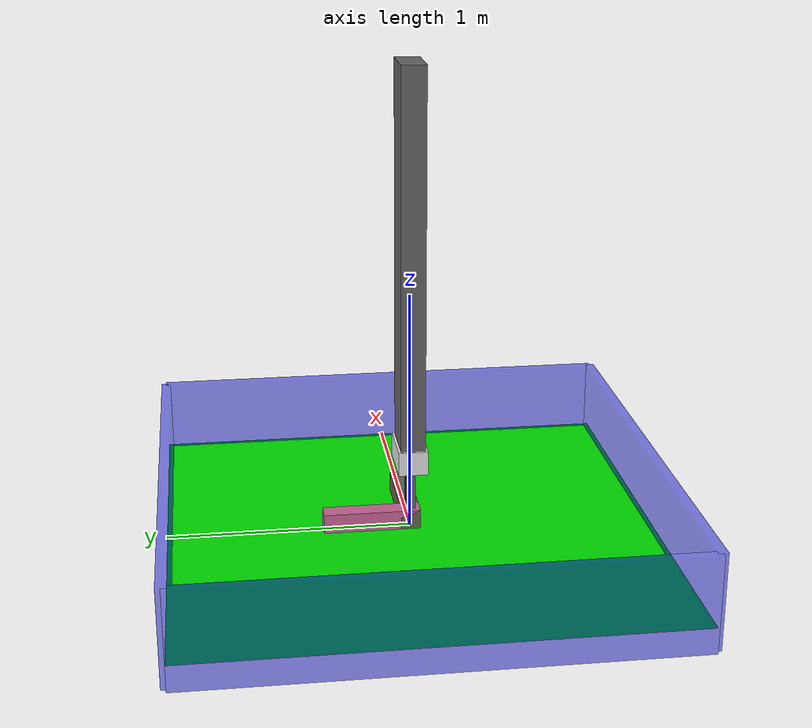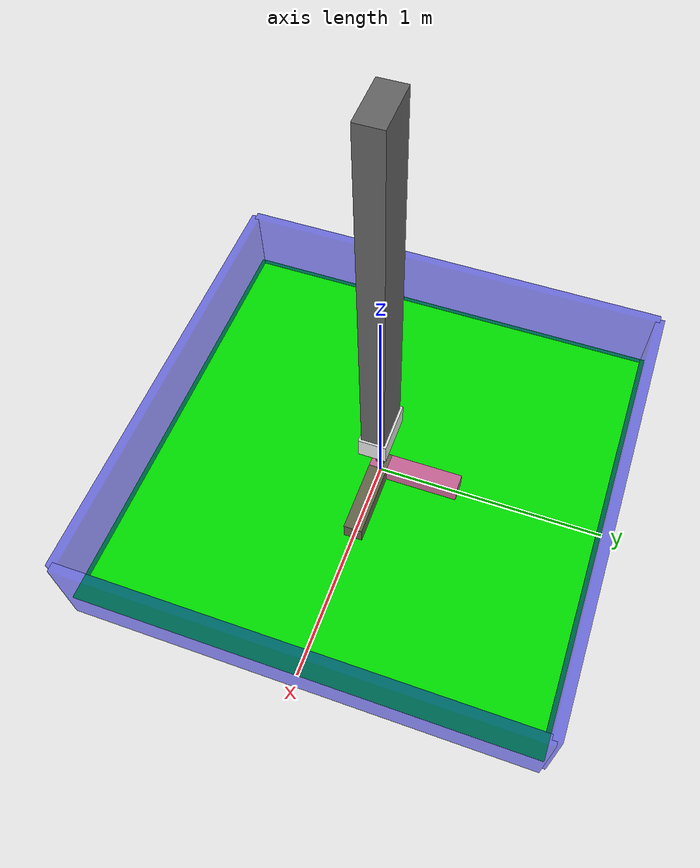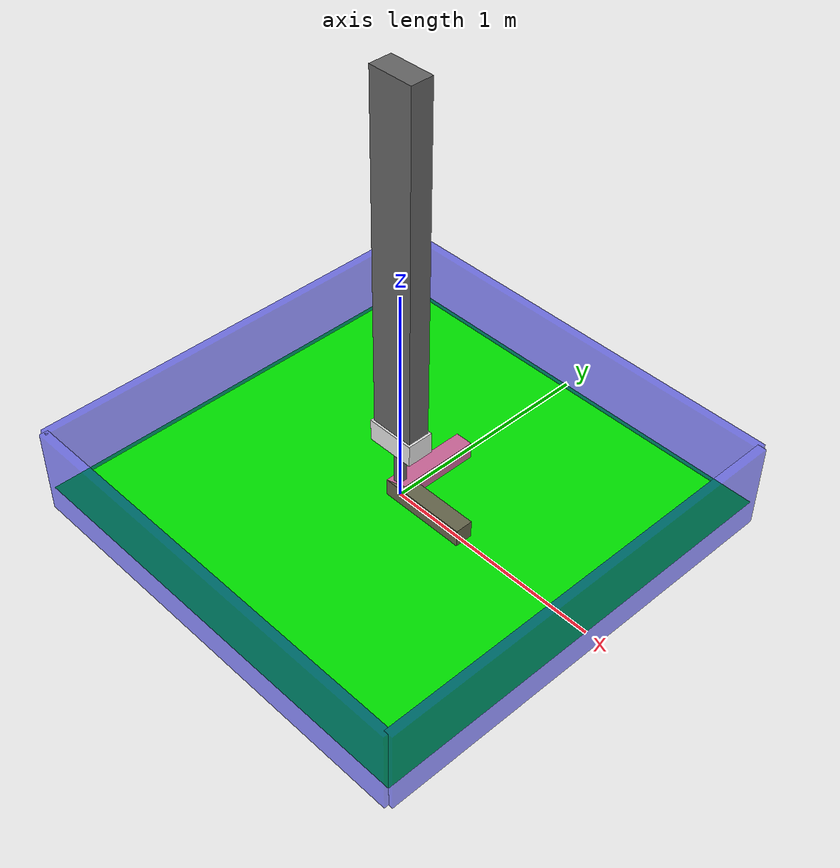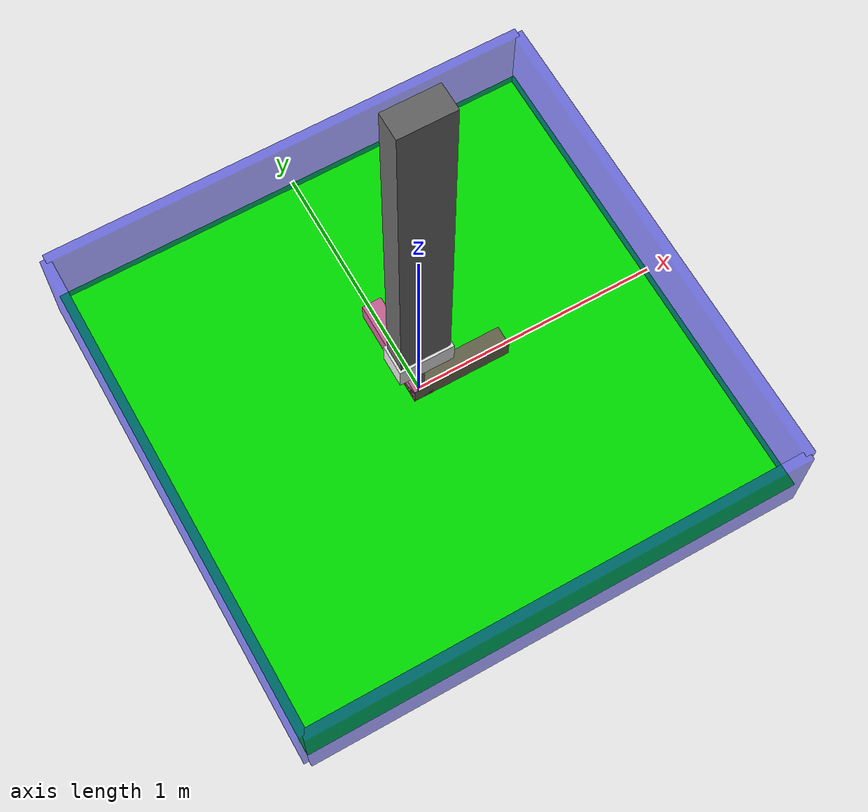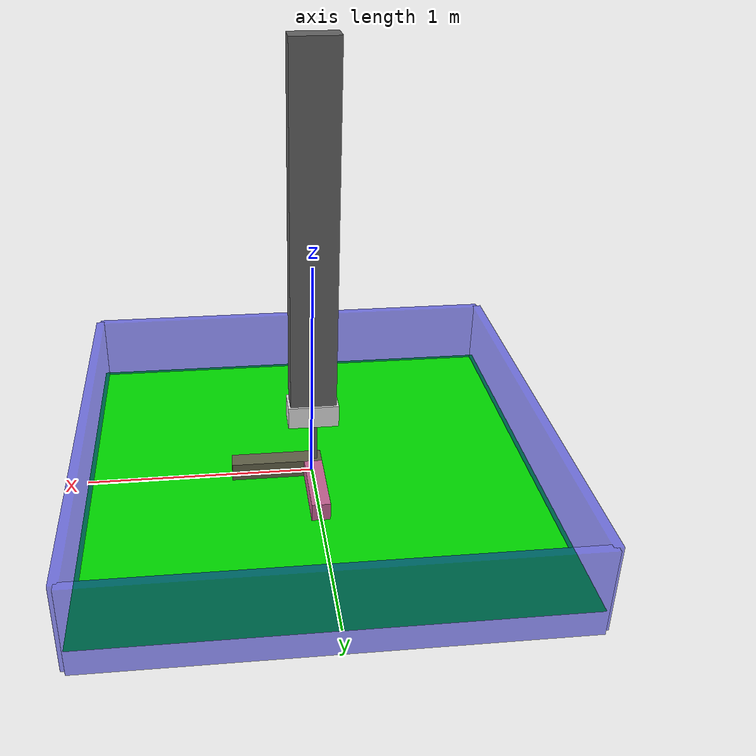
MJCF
<mujoco>
    <!-- Default settings for different tags of the model. -->
    <default>
        <joint pos="0 0 0" armature="1" limited="true" damping="1000" />
        <geom pos="0 0 0" rgba=".4 .4 .4 1" condim="3" contype="0" conaffinity="0" />
        <motor ctrlrange="-1 1" ctrllimited="true" gear="500" />
    </default>

    <compiler inertiafromgeom="true" angle="radian" />
    <option gravity="0 0 -2" timestep="0.01"/>

    <!-- Definition of all geometric shapes and joints. -->
    <worldbody>
        <!-- Diffuse lighting at position (0,0,3) pointing downwards in z direction. -->
        <light diffuse=".5 .5 .5" pos="0 0 10" dir="0 0 -1" castshadow="false" />

        <!-- Plane centered at origin with color green and size 1*1 unit^2. -->
        <geom name="table" type="plane" size="1 1 0.1" rgba="0 0.9 0 1" friction="0 0 0" contype="1" conaffinity="1" />

        <!-- Build walls around the plane. -->
        <geom type="box" size="1 0.02 0.2" pos="0 1 0.1" rgba="0 0 0.9 0.5"  contype="1" conaffinity="1" />
        <geom type="box" size="1 0.02 0.2" pos="0 -1 0.1" rgba="0 0 0.9 0.5"  contype="1" conaffinity="1" />
        <geom type="box" size="0.02 1 0.2" pos="1 0 0.1" rgba="0 0 0.9 0.5"  contype="1" conaffinity="1" />
        <geom type="box" size="0.02 1 0.2" pos="-1 0 0.1" rgba="0 0 0.9 0.5"  contype="1" conaffinity="1" />

        <!-- Build robotic arms. -->
        <body name="robot" pos="0 0 1.12">
            <joint name="cart_slide_x" type="slide" axis="1 0 0" range="-1 1" />
            <joint name="cart_slide_y" type="slide" axis="0 1 0" range="-1 1" />
            <joint name="cart_slide_z" type="slide" axis="0 0 1" range="0 0.3" />
            <joint name="cart_rotate_z" type="hinge" axis="0 0 1" range="-31.4 31.4" />

            <geom name="arm" type="box" size=".1 .05 .8" pos="0 0 0" />
            <geom name="wrist" type="box" size=".11 .06 .05" pos="0 0 -0.8" rgba=".9 .9 .9 1" contype="1" conaffinity="1" />

            <body name="l_hand" pos="-0.01 0 -0.9">
                <joint name="l_hand_slide_x" type="slide" axis="-1 0 0" range="0 0.07" />
                <geom name="l_finger" type="box" size=".01 .02 .2" density="0.001" contype="1" conaffinity="1" />
            </body>

            <body name="r_hand" pos="0.001 0 -0.9">
                <joint name="r_hand_slide_x" type="slide" axis="1 0 0" range="0 0.07" />
                <geom name="r_finger" type="box" size=".01 .02 .2" density="0.001" contype="1" conaffinity="1" />
            </body>
        </body>

        <!-- Objects for the robot to push and goals for the objects. -->
        <body name="obj1" pos="0 0 0.04">
            <geom type="box" size=".01 .01 .01" rgba="0 0 0 0" />
            <body name="obj1_rotation" pos="0 0 0">
                <geom type="box" size=".01 .01 .01" rgba="0 0 0 0" />
                <body name="obj1_1" pos="0 .16 0">
                    <geom type="box" size="0.04 0.2 0.04" rgba=".8 .4 .6 1" density='0.00001' contype="1" conaffinity="1" />
                </body>
                <body name="obj1_2" pos=".16 0 0">
                    <geom type="box" size="0.2 0.04 0.04" rgba=".4 .4 .3 1" density='0.00001' contype="1" conaffinity="1" />
                </body>
                <joint name="obj1_rotate_z" type="hinge" axis="0 0 1" range="-31.4 31.4" />
            </body>
            <joint name="obj1_slide_z" type="slide" axis="0 0 1" range="-10 10" damping="10.0" />
            <joint name="obj1_slide_x" type="slide" axis="1 0 0" range="-10 10" damping="10.0" />
            <joint name="obj1_slide_y" type="slide" axis="0 1 0" range="-10 10" damping="10.0" />
        </body>

        <body name="goal1" pos="0 0 0.04">
            <geom type="box" size=".01 .01 .01" rgba="0 0 0 0" />
            <body name="goal1_rotation" pos="0 0 0">
                <geom type="box" size=".01 .01 .01" rgba="0 0 0 0" />
                <body name="goal1_1" pos="0 .16 0">
                    <geom type="box" size="0.04 0.2 0.04" rgba=".8 .4 .6 .0" density='0.00001' contype="0" conaffinity="0" />
                </body>
                <body name="goal1_2" pos=".16 0 0">
                    <geom type="box" size="0.2 0.04 0.04" rgba=".4 .4 .3 .0" density='0.00001' contype="0" conaffinity="0" />
                </body>
                <joint name="goal1_rotate_z" type="hinge" axis="0 0 1" range="-31.4 31.4" />
            </body>
            <joint name="goal1_slide_x" type="slide" axis="1 0 0" range="-10 10" damping="0.5" />
            <joint name="goal1_slide_y" type="slide" axis="0 1 0" range="-10 10" damping="0.5" />
        </body>

        <body name="obj2" pos="0 0 0.04">
            <geom type="box" size=".01 .01 .01" rgba="0 0 0 0" />
            <body name="obj2_rotation" pos="0 0 0">
                <geom type="box" size=".01 .01 .01" rgba="0 0 0 0" />
                <body name="obj2_1" pos="0 .16 0">
                    <geom type="box" size="0.04 0.2 0.04" rgba="1 0.7 0.4 1" density='0.00001' contype="1" conaffinity="1" />
                </body>
                <body name="obj2_2" pos=".16 0 0">
                    <geom type="box" size="0.2 0.04 0.04" rgba="0.7 0.4 0.3 1" density='0.00001' contype="1" conaffinity="1" />
                </body>
                <joint name="obj2_rotate_z" type="hinge" axis="0 0 1" range="-31.4 31.4" />
            </body>
            <joint name="obj2_slide_z" type="slide" axis="0 0 1" range="-10 10" damping="10.0" />
            <joint name="obj2_slide_x" type="slide" axis="1 0 0" range="-10 10" damping="10.0" />
            <joint name="obj2_slide_y" type="slide" axis="0 1 0" range="-10 10" damping="10.0" />
        </body>

        <body name="goal2" pos="0 0 0.04">
            <geom type="box" size=".01 .01 .01" rgba="0 0 0 0" />
            <body name="goal2_rotation" pos="0 0 0">
                <geom type="box" size=".01 .01 .01" rgba="0 0 0 0" />
                <body name="goal2_1" pos="0 .16 0">
                    <geom type="box" size="0.04 0.2 0.04" rgba="1 0.7 0.4 0.0" density='0.00001' contype="0" conaffinity="0" />
                </body>
                <body name="goal2_2" pos=".16 0 0">
                    <geom type="box" size="0.2 0.04 0.04" rgba="0.7 0.4 0.3 0.0" density='0.00001' contype="0" conaffinity="0" />
                </body>
                <joint name="goal2_rotate_z" type="hinge" axis="0 0 1" range="-31.4 31.4" />
            </body>
            <joint name="goal2_slide_x" type="slide" axis="1 0 0" range="-10 10" damping="0.5" />
            <joint name="goal2_slide_y" type="slide" axis="0 1 0" range="-10 10" damping="0.5" />
        </body>
    </worldbody>

    <!-- Actuators that can be controlled by action vector. -->
    <actuator>
        <motor joint="cart_slide_x" />
        <motor joint="cart_slide_y" />
        <motor joint="cart_slide_z" />
        <motor joint="cart_rotate_z" />
        <motor joint="l_hand_slide_x" />
        <motor joint="r_hand_slide_x" />
    </actuator>
</mujoco>
